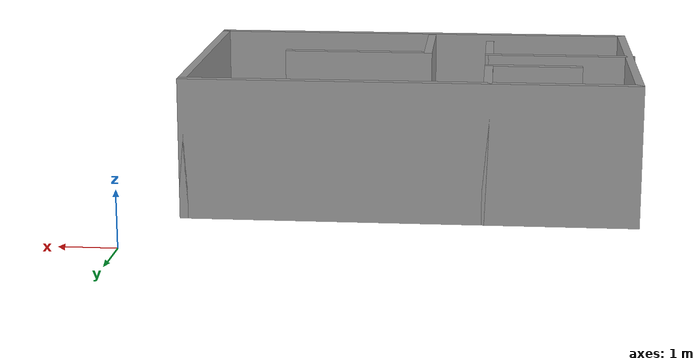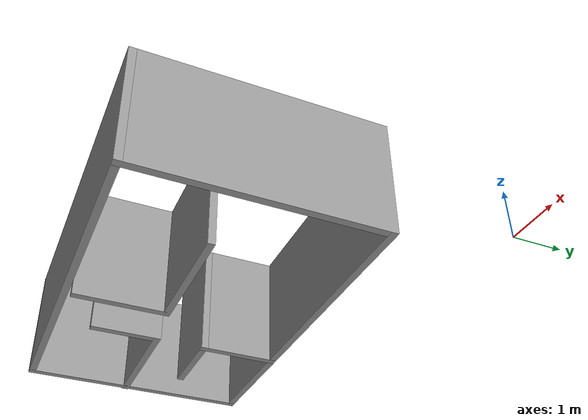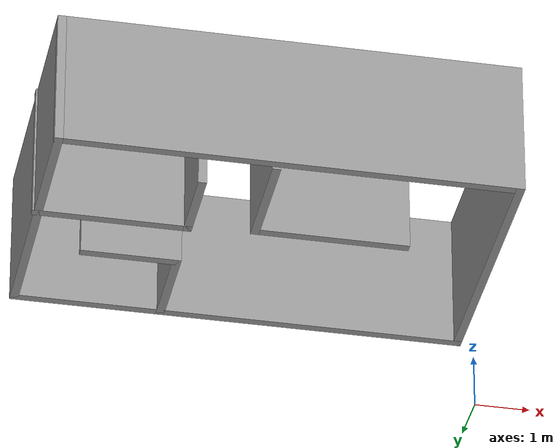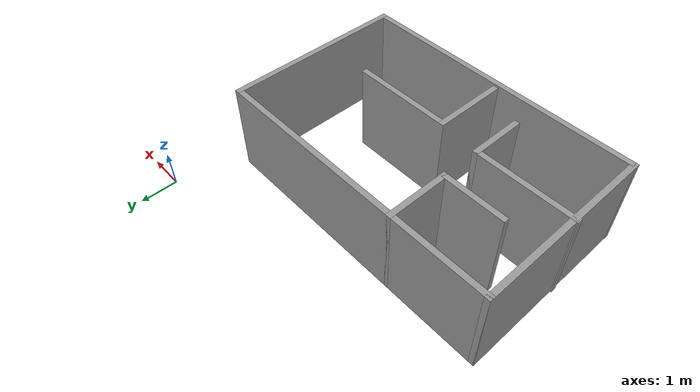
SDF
<?xml version='1.0'?>
<sdf version='1.7'>
  <model name='room'>
    <pose>-4.35627 -3.42849 0 0 -0 0</pose>
    <link name='Wall_14'>
      <collision name='Wall_14_Collision'>
        <geometry>
          <box>
            <size>8 0.15 2.5</size>
          </box>
        </geometry>
        <pose>0 0 1.25 0 -0 0</pose>
      </collision>
      <visual name='Wall_14_Visual'>
        <pose>0 0 1.25 0 -0 0</pose>
        <geometry>
          <box>
            <size>8 0.15 2.5</size>
          </box>
        </geometry>
        <material>
          <script>
            <uri>file://media/materials/scripts/gazebo.material</uri>
            <name>Gazebo/Grey</name>
          </script>
          <ambient>1 1 1 1</ambient>
        </material>
        <meta>
          <layer>0</layer>
        </meta>
      </visual>
      <pose>-0.325329 1.49651 0 0 -0 0</pose>
    </link>
    <link name='Wall_15'>
      <collision name='Wall_15_Collision'>
        <geometry>
          <box>
            <size>5 0.15 2.5</size>
          </box>
        </geometry>
        <pose>0 0 1.25 0 -0 0</pose>
      </collision>
      <visual name='Wall_15_Visual'>
        <pose>0 0 1.25 0 -0 0</pose>
        <geometry>
          <box>
            <size>5 0.15 2.5</size>
          </box>
        </geometry>
        <material>
          <script>
            <uri>file://media/materials/scripts/gazebo.material</uri>
            <name>Gazebo/Grey</name>
          </script>
          <ambient>1 1 1 1</ambient>
        </material>
        <meta>
          <layer>0</layer>
        </meta>
      </visual>
      <pose>3.59967 -0.92849 0 0 -0 -1.5708</pose>
    </link>
    <link name='Wall_16'>
      <collision name='Wall_16_Collision'>
        <geometry>
          <box>
            <size>8 0.15 2.5</size>
          </box>
        </geometry>
        <pose>0 0 1.25 0 -0 0</pose>
      </collision>
      <visual name='Wall_16_Visual'>
        <pose>0 0 1.25 0 -0 0</pose>
        <geometry>
          <box>
            <size>8 0.15 2.5</size>
          </box>
        </geometry>
        <material>
          <script>
            <uri>file://media/materials/scripts/gazebo.material</uri>
            <name>Gazebo/Grey</name>
          </script>
          <ambient>1 1 1 1</ambient>
        </material>
        <meta>
          <layer>0</layer>
        </meta>
      </visual>
      <pose>-0.325329 -3.35349 0 0 -0 3.14159</pose>
    </link>
    <link name='Wall_17'>
      <collision name='Wall_17_Collision'>
        <geometry>
          <box>
            <size>5 0.15 2.5</size>
          </box>
        </geometry>
        <pose>0 0 1.25 0 -0 0</pose>
      </collision>
      <visual name='Wall_17_Visual'>
        <pose>0 0 1.25 0 -0 0</pose>
        <geometry>
          <box>
            <size>5 0.15 2.5</size>
          </box>
        </geometry>
        <material>
          <script>
            <uri>file://media/materials/scripts/gazebo.material</uri>
            <name>Gazebo/Grey</name>
          </script>
          <ambient>1 1 1 1</ambient>
        </material>
        <meta>
          <layer>0</layer>
        </meta>
      </visual>
      <pose>-4.25033 -0.92849 0 0 -0 1.5708</pose>
    </link>
    <link name='Wall_19'>
      <collision name='Wall_19_Collision'>
        <geometry>
          <box>
            <size>1.75 0.15 2.5</size>
          </box>
        </geometry>
        <pose>0 0 1.25 0 -0 0</pose>
      </collision>
      <visual name='Wall_19_Visual'>
        <pose>0 0 1.25 0 -0 0</pose>
        <geometry>
          <box>
            <size>1.75 0.15 2.5</size>
          </box>
        </geometry>
        <material>
          <script>
            <uri>file://media/materials/scripts/gazebo.material</uri>
            <name>Gazebo/Grey</name>
          </script>
          <ambient>1 1 1 1</ambient>
        </material>
        <meta>
          <layer>0</layer>
        </meta>
      </visual>
      <pose>-1.68242 0.69651 0 0 -0 -1.5708</pose>
    </link>
    <link name='Wall_20'>
      <collision name='Wall_20_Collision'>
        <geometry>
          <box>
            <size>1.75 0.15 2.5</size>
          </box>
        </geometry>
        <pose>0 0 1.25 0 -0 0</pose>
      </collision>
      <visual name='Wall_20_Visual'>
        <pose>0 0 1.25 0 -0 0</pose>
        <geometry>
          <box>
            <size>1.75 0.15 2.5</size>
          </box>
        </geometry>
        <material>
          <script>
            <uri>file://media/materials/scripts/gazebo.material</uri>
            <name>Gazebo/Grey</name>
          </script>
          <ambient>1 1 1 1</ambient>
        </material>
        <meta>
          <layer>0</layer>
        </meta>
      </visual>
      <pose>-2.48242 -0.10349 0 0 -0 3.14159</pose>
    </link>
    <link name='Wall_22'>
      <collision name='Wall_22_Collision'>
        <geometry>
          <box>
            <size>2.75 0.15 2.5</size>
          </box>
        </geometry>
        <pose>0 0 1.25 0 -0 0</pose>
      </collision>
      <visual name='Wall_22_Visual'>
        <pose>0 0 1.25 0 -0 0</pose>
        <geometry>
          <box>
            <size>2.75 0.15 2.5</size>
          </box>
        </geometry>
        <material>
          <script>
            <uri>file://media/materials/scripts/gazebo.material</uri>
            <name>Gazebo/Grey</name>
          </script>
          <ambient>1 1 1 1</ambient>
        </material>
        <meta>
          <layer>0</layer>
        </meta>
      </visual>
      <pose>-2.98127 -1.16421 0 0 -0 0</pose>
    </link>
    <link name='Wall_23'>
      <collision name='Wall_23_Collision'>
        <geometry>
          <box>
            <size>1.5 0.15 2.5</size>
          </box>
        </geometry>
        <pose>0 0 1.25 0 -0 0</pose>
      </collision>
      <visual name='Wall_23_Visual'>
        <pose>0 0 1.25 0 -0 0</pose>
        <geometry>
          <box>
            <size>1.5 0.15 2.5</size>
          </box>
        </geometry>
        <material>
          <script>
            <uri>file://media/materials/scripts/gazebo.material</uri>
            <name>Gazebo/Grey</name>
          </script>
          <ambient>1 1 1 1</ambient>
        </material>
        <meta>
          <layer>0</layer>
        </meta>
      </visual>
      <pose>-1.68127 -1.83921 0 0 -0 -1.5708</pose>
    </link>
    <link name='Wall_25'>
      <collision name='Wall_25_Collision'>
        <geometry>
          <box>
            <size>2 0.15 2.5</size>
          </box>
        </geometry>
        <pose>0 0 1.25 0 -0 0</pose>
      </collision>
      <visual name='Wall_25_Visual'>
        <pose>0 0 1.25 0 -0 0</pose>
        <geometry>
          <box>
            <size>2 0.15 2.5</size>
          </box>
        </geometry>
        <material>
          <script>
            <uri>file://media/materials/scripts/gazebo.material</uri>
            <name>Gazebo/Grey</name>
          </script>
          <ambient>1 1 1 1</ambient>
        </material>
        <meta>
          <layer>0</layer>
        </meta>
      </visual>
      <pose>-0.537693 -2.21929 0 0 -0 1.5708</pose>
    </link>
    <link name='Wall_26'>
      <collision name='Wall_26_Collision'>
        <geometry>
          <box>
            <size>2.75 0.15 2.5</size>
          </box>
        </geometry>
        <pose>0 0 1.25 0 -0 0</pose>
      </collision>
      <visual name='Wall_26_Visual'>
        <pose>0 0 1.25 0 -0 0</pose>
        <geometry>
          <box>
            <size>2.75 0.15 2.5</size>
          </box>
        </geometry>
        <material>
          <script>
            <uri>file://media/materials/scripts/gazebo.material</uri>
            <name>Gazebo/Grey</name>
          </script>
          <ambient>1 1 1 1</ambient>
        </material>
        <meta>
          <layer>0</layer>
        </meta>
      </visual>
      <pose>0.762307 -1.29428 0 0 -0 0</pose>
    </link>
    <static>1</static>
  </model>
</sdf>
